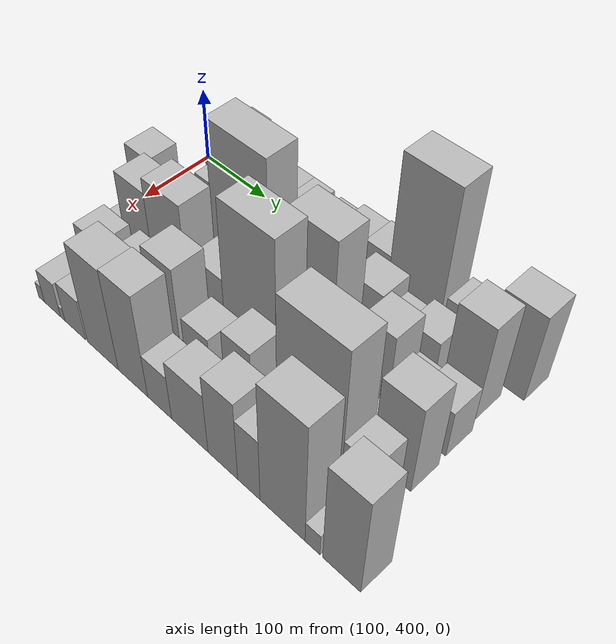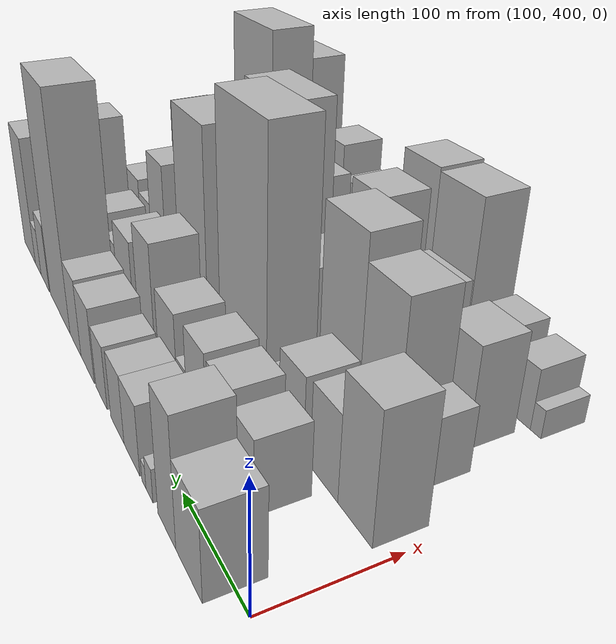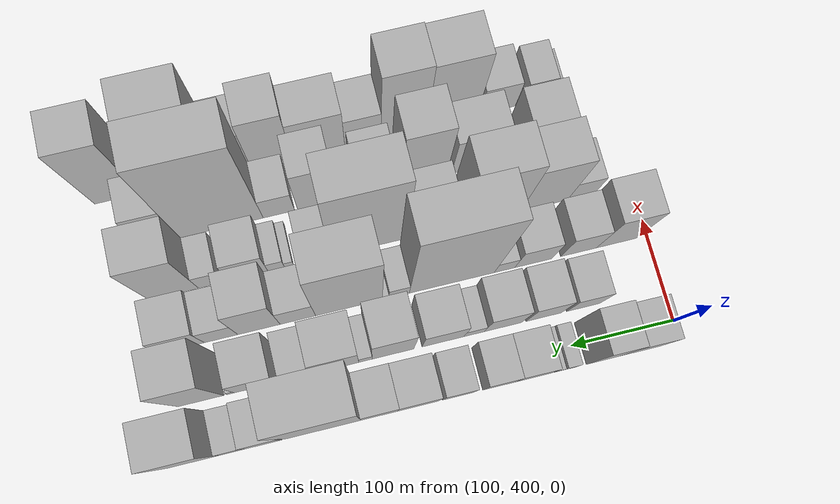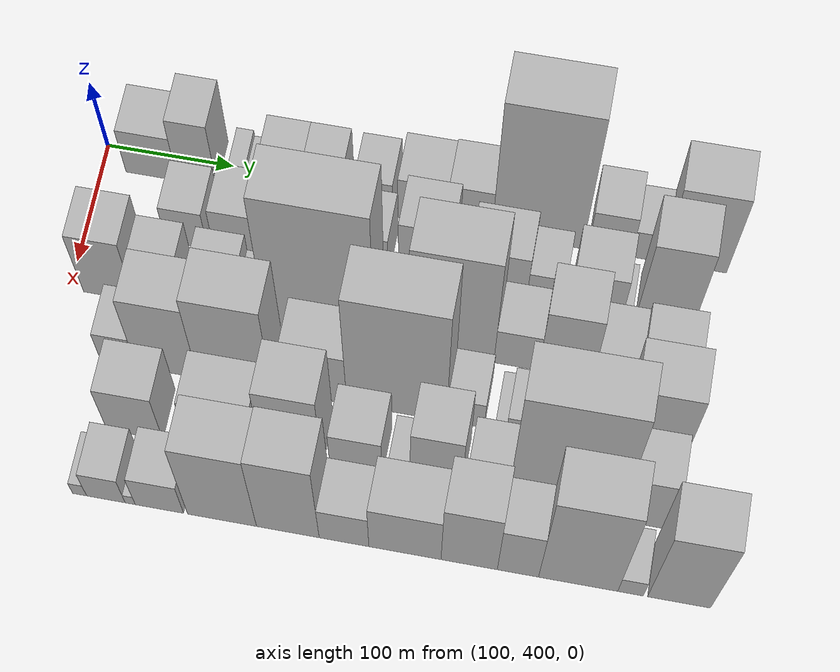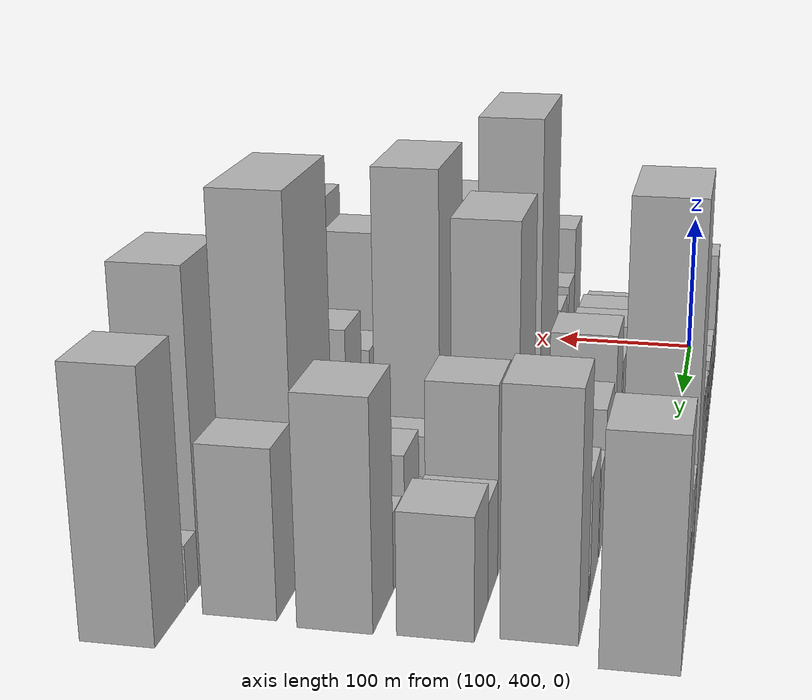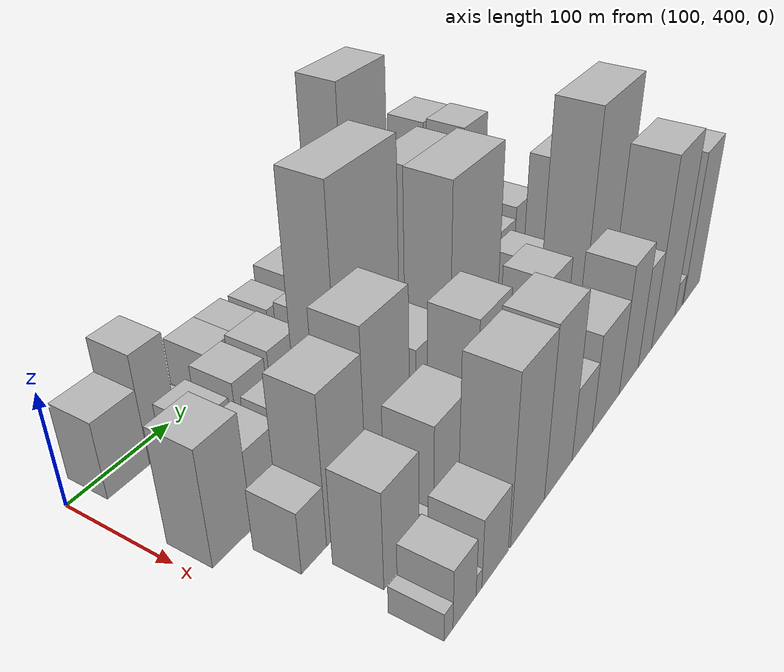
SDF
<sdf version="1.6">
 <world name="default">
  <model name="building_39">
   <static>1</static>
   <pose>100.0000 439.3094 0 0.000000 0.000000 0.000000</pose>
   <link name="link">
    <pose>0 0 34.50 0 0 0</pose>
    <collision name="collision"><geometry><box><size>40.0000 40.8134 69.0000</size></box></geometry></collision>
    <visual name="visual">
     <cast_shadows>0</cast_shadows>
     <geometry><box><size>40.0000 40.8134 69.0000</size></box></geometry>
     <material>
      <script>
       <uri>model://HANNAS_wall/materials/scripts</uri>
       <uri>model://HANNAS_wall/materials/textures</uri>
       <name>vrc/HANNAS_wall</name>
      </script>
     </material>
    </visual>
   </link>
  </model>
  <model name="building_40">
   <static>1</static>
   <pose>100.0000 475.4069 0 0.000000 0.000000 0.000000</pose>
   <link name="link">
    <pose>0 0 49.50 0 0 0</pose>
    <collision name="collision"><geometry><box><size>40.0000 31.3816 99.0000</size></box></geometry></collision>
    <visual name="visual">
     <cast_shadows>0</cast_shadows>
     <geometry><box><size>40.0000 31.3816 99.0000</size></box></geometry>
     <material>
      <script>
       <uri>model://HANNAS_wall/materials/scripts</uri>
       <uri>model://HANNAS_wall/materials/textures</uri>
       <name>vrc/HANNAS_wall</name>
      </script>
     </material>
    </visual>
   </link>
  </model>
  <model name="building_41">
   <static>1</static>
   <pose>100.0000 506.8085 0 0.000000 0.000000 0.000000</pose>
   <link name="link">
    <pose>0 0 13.50 0 0 0</pose>
    <collision name="collision"><geometry><box><size>40.0000 13.4217 27.0000</size></box></geometry></collision>
    <visual name="visual">
     <cast_shadows>0</cast_shadows>
     <geometry><box><size>40.0000 13.4217 27.0000</size></box></geometry>
     <material>
      <script>
       <uri>model://HANNAS_wall/materials/scripts</uri>
       <uri>model://HANNAS_wall/materials/textures</uri>
       <name>vrc/HANNAS_wall</name>
      </script>
     </material>
    </visual>
   </link>
  </model>
  <model name="building_42">
   <static>1</static>
   <pose>100.0000 517.6482 0 0.000000 0.000000 0.000000</pose>
   <link name="link">
    <pose>0 0 9.00 0 0 0</pose>
    <collision name="collision"><geometry><box><size>40.0000 8.2577 18.0000</size></box></geometry></collision>
    <visual name="visual">
     <cast_shadows>0</cast_shadows>
     <geometry><box><size>40.0000 8.2577 18.0000</size></box></geometry>
     <material>
      <script>
       <uri>model://HANNAS_wall/materials/scripts</uri>
       <uri>model://HANNAS_wall/materials/textures</uri>
       <name>vrc/HANNAS_wall</name>
      </script>
     </material>
    </visual>
   </link>
  </model>
  <model name="building_43">
   <static>1</static>
   <pose>100.0000 542.6935 0 0.000000 0.000000 0.000000</pose>
   <link name="link">
    <pose>0 0 28.50 0 0 0</pose>
    <collision name="collision"><geometry><box><size>40.0000 33.8327 57.0000</size></box></geometry></collision>
    <visual name="visual">
     <cast_shadows>0</cast_shadows>
     <geometry><box><size>40.0000 33.8327 57.0000</size></box></geometry>
     <material>
      <script>
       <uri>model://HANNAS_wall/materials/scripts</uri>
       <uri>model://HANNAS_wall/materials/textures</uri>
       <name>vrc/HANNAS_wall</name>
      </script>
     </material>
    </visual>
   </link>
  </model>
  <model name="building_44">
   <static>1</static>
   <pose>100.0000 575.2083 0 0.000000 0.000000 0.000000</pose>
   <link name="link">
    <pose>0 0 28.50 0 0 0</pose>
    <collision name="collision"><geometry><box><size>40.0000 31.1970 57.0000</size></box></geometry></collision>
    <visual name="visual">
     <cast_shadows>0</cast_shadows>
     <geometry><box><size>40.0000 31.1970 57.0000</size></box></geometry>
     <material>
      <script>
       <uri>model://HANNAS_wall/materials/scripts</uri>
       <uri>model://HANNAS_wall/materials/textures</uri>
       <name>vrc/HANNAS_wall</name>
      </script>
     </material>
    </visual>
   </link>
  </model>
  <model name="building_45">
   <static>1</static>
   <pose>100.0000 614.5496 0 0.000000 0.000000 0.000000</pose>
   <link name="link">
    <pose>0 0 27.00 0 0 0</pose>
    <collision name="collision"><geometry><box><size>40.0000 29.4855 54.0000</size></box></geometry></collision>
    <visual name="visual">
     <cast_shadows>0</cast_shadows>
     <geometry><box><size>40.0000 29.4855 54.0000</size></box></geometry>
     <material>
      <script>
       <uri>model://HANNAS_wall/materials/scripts</uri>
       <uri>model://HANNAS_wall/materials/textures</uri>
       <name>vrc/HANNAS_wall</name>
      </script>
     </material>
    </visual>
   </link>
  </model>
  <model name="building_46">
   <static>1</static>
   <pose>100.0000 652.6038 0 0.000000 0.000000 0.000000</pose>
   <link name="link">
    <pose>0 0 33.00 0 0 0</pose>
    <collision name="collision"><geometry><box><size>40.0000 38.6227 66.0000</size></box></geometry></collision>
    <visual name="visual">
     <cast_shadows>0</cast_shadows>
     <geometry><box><size>40.0000 38.6227 66.0000</size></box></geometry>
     <material>
      <script>
       <uri>model://HANNAS_wall/materials/scripts</uri>
       <uri>model://HANNAS_wall/materials/textures</uri>
       <name>vrc/HANNAS_wall</name>
      </script>
     </material>
    </visual>
   </link>
  </model>
  <model name="building_47">
   <static>1</static>
   <pose>100.0000 689.1792 0 0.000000 0.000000 0.000000</pose>
   <link name="link">
    <pose>0 0 34.50 0 0 0</pose>
    <collision name="collision"><geometry><box><size>40.0000 34.5283 69.0000</size></box></geometry></collision>
    <visual name="visual">
     <cast_shadows>0</cast_shadows>
     <geometry><box><size>40.0000 34.5283 69.0000</size></box></geometry>
     <material>
      <script>
       <uri>model://HANNAS_wall/materials/scripts</uri>
       <uri>model://HANNAS_wall/materials/textures</uri>
       <name>vrc/HANNAS_wall</name>
      </script>
     </material>
    </visual>
   </link>
  </model>
  <model name="building_48">
   <static>1</static>
   <pose>100.0000 741.5314 0 0.000000 0.000000 0.000000</pose>
   <link name="link">
    <pose>0 0 105.00 0 0 0</pose>
    <collision name="collision"><geometry><box><size>40.0000 70.1761 210.0000</size></box></geometry></collision>
    <visual name="visual">
     <cast_shadows>0</cast_shadows>
     <geometry><box><size>40.0000 70.1761 210.0000</size></box></geometry>
     <material>
      <script>
       <uri>model://HANNAS_wall/materials/scripts</uri>
       <uri>model://HANNAS_wall/materials/textures</uri>
       <name>vrc/HANNAS_wall</name>
      </script>
     </material>
    </visual>
   </link>
  </model>
  <model name="building_49">
   <static>1</static>
   <pose>100.0000 797.2929 0 0.000000 0.000000 0.000000</pose>
   <link name="link">
    <pose>0 0 33.00 0 0 0</pose>
    <collision name="collision"><geometry><box><size>40.0000 33.3468 66.0000</size></box></geometry></collision>
    <visual name="visual">
     <cast_shadows>0</cast_shadows>
     <geometry><box><size>40.0000 33.3468 66.0000</size></box></geometry>
     <material>
      <script>
       <uri>model://HANNAS_wall/materials/scripts</uri>
       <uri>model://HANNAS_wall/materials/textures</uri>
       <name>vrc/HANNAS_wall</name>
      </script>
     </material>
    </visual>
   </link>
  </model>
  <model name="building_50">
   <static>1</static>
   <pose>100.0000 826.0094 0 0.000000 0.000000 0.000000</pose>
   <link name="link">
    <pose>0 0 22.50 0 0 0</pose>
    <collision name="collision"><geometry><box><size>40.0000 24.0863 45.0000</size></box></geometry></collision>
    <visual name="visual">
     <cast_shadows>0</cast_shadows>
     <geometry><box><size>40.0000 24.0863 45.0000</size></box></geometry>
     <material>
      <script>
       <uri>model://HANNAS_wall/materials/scripts</uri>
       <uri>model://HANNAS_wall/materials/textures</uri>
       <name>vrc/HANNAS_wall</name>
      </script>
     </material>
    </visual>
   </link>
  </model>
  <model name="building_51">
   <static>1</static>
   <pose>100.0000 862.6243 0 0.000000 0.000000 0.000000</pose>
   <link name="link">
    <pose>0 0 63.00 0 0 0</pose>
    <collision name="collision"><geometry><box><size>40.0000 49.1435 126.0000</size></box></geometry></collision>
    <visual name="visual">
     <cast_shadows>0</cast_shadows>
     <geometry><box><size>40.0000 49.1435 126.0000</size></box></geometry>
     <material>
      <script>
       <uri>model://HANNAS_wall/materials/scripts</uri>
       <uri>model://HANNAS_wall/materials/textures</uri>
       <name>vrc/HANNAS_wall</name>
      </script>
     </material>
    </visual>
   </link>
  </model>
  <model name="building_83">
   <static>1</static>
   <pose>152.0000 478.9262 0 0.000000 0.000000 0.000000</pose>
   <link name="link">
    <pose>0 0 30.00 0 0 0</pose>
    <collision name="collision"><geometry><box><size>40.0000 32.5907 60.0000</size></box></geometry></collision>
    <visual name="visual">
     <cast_shadows>0</cast_shadows>
     <geometry><box><size>40.0000 32.5907 60.0000</size></box></geometry>
     <material>
      <script>
       <uri>model://HANNAS_wall/materials/scripts</uri>
       <uri>model://HANNAS_wall/materials/textures</uri>
       <name>vrc/HANNAS_wall</name>
      </script>
     </material>
    </visual>
   </link>
  </model>
  <model name="building_84">
   <static>1</static>
   <pose>152.0000 517.5690 0 0.000000 0.000000 0.000000</pose>
   <link name="link">
    <pose>0 0 34.50 0 0 0</pose>
    <collision name="collision"><geometry><box><size>40.0000 34.6949 69.0000</size></box></geometry></collision>
    <visual name="visual">
     <cast_shadows>0</cast_shadows>
     <geometry><box><size>40.0000 34.6949 69.0000</size></box></geometry>
     <material>
      <script>
       <uri>model://HANNAS_wall/materials/scripts</uri>
       <uri>model://HANNAS_wall/materials/textures</uri>
       <name>vrc/HANNAS_wall</name>
      </script>
     </material>
    </visual>
   </link>
  </model>
  <model name="building_85">
   <static>1</static>
   <pose>152.0000 557.3188 0 0.000000 0.000000 0.000000</pose>
   <link name="link">
    <pose>0 0 36.00 0 0 0</pose>
    <collision name="collision"><geometry><box><size>40.0000 36.8047 72.0000</size></box></geometry></collision>
    <visual name="visual">
     <cast_shadows>0</cast_shadows>
     <geometry><box><size>40.0000 36.8047 72.0000</size></box></geometry>
     <material>
      <script>
       <uri>model://HANNAS_wall/materials/scripts</uri>
       <uri>model://HANNAS_wall/materials/textures</uri>
       <name>vrc/HANNAS_wall</name>
      </script>
     </material>
    </visual>
   </link>
  </model>
  <model name="building_86">
   <static>1</static>
   <pose>152.0000 585.4722 0 0.000000 0.000000 0.000000</pose>
   <link name="link">
    <pose>0 0 16.50 0 0 0</pose>
    <collision name="collision"><geometry><box><size>40.0000 19.5022 33.0000</size></box></geometry></collision>
    <visual name="visual">
     <cast_shadows>0</cast_shadows>
     <geometry><box><size>40.0000 19.5022 33.0000</size></box></geometry>
     <material>
      <script>
       <uri>model://HANNAS_wall/materials/scripts</uri>
       <uri>model://HANNAS_wall/materials/textures</uri>
       <name>vrc/HANNAS_wall</name>
      </script>
     </material>
    </visual>
   </link>
  </model>
  <model name="building_87">
   <static>1</static>
   <pose>152.0000 615.3806 0 0.000000 0.000000 0.000000</pose>
   <link name="link">
    <pose>0 0 34.50 0 0 0</pose>
    <collision name="collision"><geometry><box><size>40.0000 40.3146 69.0000</size></box></geometry></collision>
    <visual name="visual">
     <cast_shadows>0</cast_shadows>
     <geometry><box><size>40.0000 40.3146 69.0000</size></box></geometry>
     <material>
      <script>
       <uri>model://HANNAS_wall/materials/scripts</uri>
       <uri>model://HANNAS_wall/materials/textures</uri>
       <name>vrc/HANNAS_wall</name>
      </script>
     </material>
    </visual>
   </link>
  </model>
  <model name="building_88">
   <static>1</static>
   <pose>152.0000 663.4884 0 0.000000 0.000000 0.000000</pose>
   <link name="link">
    <pose>0 0 51.00 0 0 0</pose>
    <collision name="collision"><geometry><box><size>40.0000 39.9011 102.0000</size></box></geometry></collision>
    <visual name="visual">
     <cast_shadows>0</cast_shadows>
     <geometry><box><size>40.0000 39.9011 102.0000</size></box></geometry>
     <material>
      <script>
       <uri>model://HANNAS_wall/materials/scripts</uri>
       <uri>model://HANNAS_wall/materials/textures</uri>
       <name>vrc/HANNAS_wall</name>
      </script>
     </material>
    </visual>
   </link>
  </model>
  <model name="building_89">
   <static>1</static>
   <pose>152.0000 689.8315 0 0.000000 0.000000 0.000000</pose>
   <link name="link">
    <pose>0 0 13.50 0 0 0</pose>
    <collision name="collision"><geometry><box><size>40.0000 12.7852 27.0000</size></box></geometry></collision>
    <visual name="visual">
     <cast_shadows>0</cast_shadows>
     <geometry><box><size>40.0000 12.7852 27.0000</size></box></geometry>
     <material>
      <script>
       <uri>model://HANNAS_wall/materials/scripts</uri>
       <uri>model://HANNAS_wall/materials/textures</uri>
       <name>vrc/HANNAS_wall</name>
      </script>
     </material>
    </visual>
   </link>
  </model>
  <model name="building_90">
   <static>1</static>
   <pose>152.0000 718.7877 0 0.000000 0.000000 0.000000</pose>
   <link name="link">
    <pose>0 0 39.00 0 0 0</pose>
    <collision name="collision"><geometry><box><size>40.0000 45.1271 78.0000</size></box></geometry></collision>
    <visual name="visual">
     <cast_shadows>0</cast_shadows>
     <geometry><box><size>40.0000 45.1271 78.0000</size></box></geometry>
     <material>
      <script>
       <uri>model://HANNAS_wall/materials/scripts</uri>
       <uri>model://HANNAS_wall/materials/textures</uri>
       <name>vrc/HANNAS_wall</name>
      </script>
     </material>
    </visual>
   </link>
  </model>
  <model name="building_91">
   <static>1</static>
   <pose>152.0000 755.0618 0 0.000000 0.000000 0.000000</pose>
   <link name="link">
    <pose>0 0 27.00 0 0 0</pose>
    <collision name="collision"><geometry><box><size>40.0000 27.4213 54.0000</size></box></geometry></collision>
    <visual name="visual">
     <cast_shadows>0</cast_shadows>
     <geometry><box><size>40.0000 27.4213 54.0000</size></box></geometry>
     <material>
      <script>
       <uri>model://HANNAS_wall/materials/scripts</uri>
       <uri>model://HANNAS_wall/materials/textures</uri>
       <name>vrc/HANNAS_wall</name>
      </script>
     </material>
    </visual>
   </link>
  </model>
  <model name="building_92">
   <static>1</static>
   <pose>152.0000 794.0627 0 0.000000 0.000000 0.000000</pose>
   <link name="link">
    <pose>0 0 34.50 0 0 0</pose>
    <collision name="collision"><geometry><box><size>40.0000 40.5804 69.0000</size></box></geometry></collision>
    <visual name="visual">
     <cast_shadows>0</cast_shadows>
     <geometry><box><size>40.0000 40.5804 69.0000</size></box></geometry>
     <material>
      <script>
       <uri>model://HANNAS_wall/materials/scripts</uri>
       <uri>model://HANNAS_wall/materials/textures</uri>
       <name>vrc/HANNAS_wall</name>
      </script>
     </material>
    </visual>
   </link>
  </model>
  <model name="building_93">
   <static>1</static>
   <pose>152.0000 817.7464 0 0.000000 0.000000 0.000000</pose>
   <link name="link">
    <pose>0 0 7.50 0 0 0</pose>
    <collision name="collision"><geometry><box><size>40.0000 6.7871 15.0000</size></box></geometry></collision>
    <visual name="visual">
     <cast_shadows>0</cast_shadows>
     <geometry><box><size>40.0000 6.7871 15.0000</size></box></geometry>
     <material>
      <script>
       <uri>model://HANNAS_wall/materials/scripts</uri>
       <uri>model://HANNAS_wall/materials/textures</uri>
       <name>vrc/HANNAS_wall</name>
      </script>
     </material>
    </visual>
   </link>
  </model>
  <model name="building_94">
   <static>1</static>
   <pose>152.0000 845.7357 0 0.000000 0.000000 0.000000</pose>
   <link name="link">
    <pose>0 0 69.00 0 0 0</pose>
    <collision name="collision"><geometry><box><size>40.0000 43.1915 138.0000</size></box></geometry></collision>
    <visual name="visual">
     <cast_shadows>0</cast_shadows>
     <geometry><box><size>40.0000 43.1915 138.0000</size></box></geometry>
     <material>
      <script>
       <uri>model://HANNAS_wall/materials/scripts</uri>
       <uri>model://HANNAS_wall/materials/textures</uri>
       <name>vrc/HANNAS_wall</name>
      </script>
     </material>
    </visual>
   </link>
  </model>
  <model name="building_134">
   <static>1</static>
   <pose>204.0000 430.7013 0 0.000000 0.000000 0.000000</pose>
   <link name="link">
    <pose>0 0 51.00 0 0 0</pose>
    <collision name="collision"><geometry><box><size>40.0000 39.6786 102.0000</size></box></geometry></collision>
    <visual name="visual">
     <cast_shadows>0</cast_shadows>
     <geometry><box><size>40.0000 39.6786 102.0000</size></box></geometry>
     <material>
      <script>
       <uri>model://HANNAS_wall/materials/scripts</uri>
       <uri>model://HANNAS_wall/materials/textures</uri>
       <name>vrc/HANNAS_wall</name>
      </script>
     </material>
    </visual>
   </link>
  </model>
  <model name="building_135">
   <static>1</static>
   <pose>204.0000 468.2924 0 0.000000 0.000000 0.000000</pose>
   <link name="link">
    <pose>0 0 34.50 0 0 0</pose>
    <collision name="collision"><geometry><box><size>40.0000 35.5037 69.0000</size></box></geometry></collision>
    <visual name="visual">
     <cast_shadows>0</cast_shadows>
     <geometry><box><size>40.0000 35.5037 69.0000</size></box></geometry>
     <material>
      <script>
       <uri>model://HANNAS_wall/materials/scripts</uri>
       <uri>model://HANNAS_wall/materials/textures</uri>
       <name>vrc/HANNAS_wall</name>
      </script>
     </material>
    </visual>
   </link>
  </model>
  <model name="building_136">
   <static>1</static>
   <pose>204.0000 513.2655 0 0.000000 0.000000 0.000000</pose>
   <link name="link">
    <pose>0 0 33.00 0 0 0</pose>
    <collision name="collision"><geometry><box><size>40.0000 36.4424 66.0000</size></box></geometry></collision>
    <visual name="visual">
     <cast_shadows>0</cast_shadows>
     <geometry><box><size>40.0000 36.4424 66.0000</size></box></geometry>
     <material>
      <script>
       <uri>model://HANNAS_wall/materials/scripts</uri>
       <uri>model://HANNAS_wall/materials/textures</uri>
       <name>vrc/HANNAS_wall</name>
      </script>
     </material>
    </visual>
   </link>
  </model>
  <model name="building_137">
   <static>1</static>
   <pose>204.0000 541.5413 0 0.000000 0.000000 0.000000</pose>
   <link name="link">
    <pose>0 0 19.50 0 0 0</pose>
    <collision name="collision"><geometry><box><size>40.0000 20.1091 39.0000</size></box></geometry></collision>
    <visual name="visual">
     <cast_shadows>0</cast_shadows>
     <geometry><box><size>40.0000 20.1091 39.0000</size></box></geometry>
     <material>
      <script>
       <uri>model://HANNAS_wall/materials/scripts</uri>
       <uri>model://HANNAS_wall/materials/textures</uri>
       <name>vrc/HANNAS_wall</name>
      </script>
     </material>
    </visual>
   </link>
  </model>
  <model name="building_138">
   <static>1</static>
   <pose>204.0000 593.1459 0 0.000000 0.000000 0.000000</pose>
   <link name="link">
    <pose>0 0 109.50 0 0 0</pose>
    <collision name="collision"><geometry><box><size>40.0000 83.1002 219.0000</size></box></geometry></collision>
    <visual name="visual">
     <cast_shadows>0</cast_shadows>
     <geometry><box><size>40.0000 83.1002 219.0000</size></box></geometry>
     <material>
      <script>
       <uri>model://HANNAS_wall/materials/scripts</uri>
       <uri>model://HANNAS_wall/materials/textures</uri>
       <name>vrc/HANNAS_wall</name>
      </script>
     </material>
    </visual>
   </link>
  </model>
  <model name="building_139">
   <static>1</static>
   <pose>204.0000 644.5936 0 0.000000 0.000000 0.000000</pose>
   <link name="link">
    <pose>0 0 18.00 0 0 0</pose>
    <collision name="collision"><geometry><box><size>40.0000 19.7951 36.0000</size></box></geometry></collision>
    <visual name="visual">
     <cast_shadows>0</cast_shadows>
     <geometry><box><size>40.0000 19.7951 36.0000</size></box></geometry>
     <material>
      <script>
       <uri>model://HANNAS_wall/materials/scripts</uri>
       <uri>model://HANNAS_wall/materials/textures</uri>
       <name>vrc/HANNAS_wall</name>
      </script>
     </material>
    </visual>
   </link>
  </model>
  <model name="building_140">
   <static>1</static>
   <pose>204.0000 657.7146 0 0.000000 0.000000 0.000000</pose>
   <link name="link">
    <pose>0 0 7.50 0 0 0</pose>
    <collision name="collision"><geometry><box><size>40.0000 6.4469 15.0000</size></box></geometry></collision>
    <visual name="visual">
     <cast_shadows>0</cast_shadows>
     <geometry><box><size>40.0000 6.4469 15.0000</size></box></geometry>
     <material>
      <script>
       <uri>model://HANNAS_wall/materials/scripts</uri>
       <uri>model://HANNAS_wall/materials/textures</uri>
       <name>vrc/HANNAS_wall</name>
      </script>
     </material>
    </visual>
   </link>
  </model>
  <model name="building_141">
   <static>1</static>
   <pose>204.0000 693.1926 0 0.000000 0.000000 0.000000</pose>
   <link name="link">
    <pose>0 0 90.00 0 0 0</pose>
    <collision name="collision"><geometry><box><size>40.0000 64.5092 180.0000</size></box></geometry></collision>
    <visual name="visual">
     <cast_shadows>0</cast_shadows>
     <geometry><box><size>40.0000 64.5092 180.0000</size></box></geometry>
     <material>
      <script>
       <uri>model://HANNAS_wall/materials/scripts</uri>
       <uri>model://HANNAS_wall/materials/textures</uri>
       <name>vrc/HANNAS_wall</name>
      </script>
     </material>
    </visual>
   </link>
  </model>
  <model name="building_142">
   <static>1</static>
   <pose>204.0000 742.4298 0 0.000000 0.000000 0.000000</pose>
   <link name="link">
    <pose>0 0 31.50 0 0 0</pose>
    <collision name="collision"><geometry><box><size>40.0000 33.9652 63.0000</size></box></geometry></collision>
    <visual name="visual">
     <cast_shadows>0</cast_shadows>
     <geometry><box><size>40.0000 33.9652 63.0000</size></box></geometry>
     <material>
      <script>
       <uri>model://HANNAS_wall/materials/scripts</uri>
       <uri>model://HANNAS_wall/materials/textures</uri>
       <name>vrc/HANNAS_wall</name>
      </script>
     </material>
    </visual>
   </link>
  </model>
  <model name="building_143">
   <static>1</static>
   <pose>204.0000 779.7382 0 0.000000 0.000000 0.000000</pose>
   <link name="link">
    <pose>0 0 55.50 0 0 0</pose>
    <collision name="collision"><geometry><box><size>40.0000 40.6515 111.0000</size></box></geometry></collision>
    <visual name="visual">
     <cast_shadows>0</cast_shadows>
     <geometry><box><size>40.0000 40.6515 111.0000</size></box></geometry>
     <material>
      <script>
       <uri>model://HANNAS_wall/materials/scripts</uri>
       <uri>model://HANNAS_wall/materials/textures</uri>
       <name>vrc/HANNAS_wall</name>
      </script>
     </material>
    </visual>
   </link>
  </model>
  <model name="building_144">
   <static>1</static>
   <pose>204.0000 816.0132 0 0.000000 0.000000 0.000000</pose>
   <link name="link">
    <pose>0 0 28.50 0 0 0</pose>
    <collision name="collision"><geometry><box><size>40.0000 31.8986 57.0000</size></box></geometry></collision>
    <visual name="visual">
     <cast_shadows>0</cast_shadows>
     <geometry><box><size>40.0000 31.8986 57.0000</size></box></geometry>
     <material>
      <script>
       <uri>model://HANNAS_wall/materials/scripts</uri>
       <uri>model://HANNAS_wall/materials/textures</uri>
       <name>vrc/HANNAS_wall</name>
      </script>
     </material>
    </visual>
   </link>
  </model>
  <model name="building_145">
   <static>1</static>
   <pose>204.0000 852.5925 0 0.000000 0.000000 0.000000</pose>
   <link name="link">
    <pose>0 0 34.50 0 0 0</pose>
    <collision name="collision"><geometry><box><size>40.0000 41.2599 69.0000</size></box></geometry></collision>
    <visual name="visual">
     <cast_shadows>0</cast_shadows>
     <geometry><box><size>40.0000 41.2599 69.0000</size></box></geometry>
     <material>
      <script>
       <uri>model://HANNAS_wall/materials/scripts</uri>
       <uri>model://HANNAS_wall/materials/textures</uri>
       <name>vrc/HANNAS_wall</name>
      </script>
     </material>
    </visual>
   </link>
  </model>
  <model name="building_181">
   <static>1</static>
   <pose>256.0000 450.6161 0 0.000000 0.000000 0.000000</pose>
   <link name="link">
    <pose>0 0 27.00 0 0 0</pose>
    <collision name="collision"><geometry><box><size>40.0000 27.3212 54.0000</size></box></geometry></collision>
    <visual name="visual">
     <cast_shadows>0</cast_shadows>
     <geometry><box><size>40.0000 27.3212 54.0000</size></box></geometry>
     <material>
      <script>
       <uri>model://HANNAS_wall/materials/scripts</uri>
       <uri>model://HANNAS_wall/materials/textures</uri>
       <name>vrc/HANNAS_wall</name>
      </script>
     </material>
    </visual>
   </link>
  </model>
  <model name="building_182">
   <static>1</static>
   <pose>256.0000 487.7303 0 0.000000 0.000000 0.000000</pose>
   <link name="link">
    <pose>0 0 64.50 0 0 0</pose>
    <collision name="collision"><geometry><box><size>40.0000 46.9072 129.0000</size></box></geometry></collision>
    <visual name="visual">
     <cast_shadows>0</cast_shadows>
     <geometry><box><size>40.0000 46.9072 129.0000</size></box></geometry>
     <material>
      <script>
       <uri>model://HANNAS_wall/materials/scripts</uri>
       <uri>model://HANNAS_wall/materials/textures</uri>
       <name>vrc/HANNAS_wall</name>
      </script>
     </material>
    </visual>
   </link>
  </model>
  <model name="building_183">
   <static>1</static>
   <pose>256.0000 539.2598 0 0.000000 0.000000 0.000000</pose>
   <link name="link">
    <pose>0 0 75.00 0 0 0</pose>
    <collision name="collision"><geometry><box><size>40.0000 56.1517 150.0000</size></box></geometry></collision>
    <visual name="visual">
     <cast_shadows>0</cast_shadows>
     <geometry><box><size>40.0000 56.1517 150.0000</size></box></geometry>
     <material>
      <script>
       <uri>model://HANNAS_wall/materials/scripts</uri>
       <uri>model://HANNAS_wall/materials/textures</uri>
       <name>vrc/HANNAS_wall</name>
      </script>
     </material>
    </visual>
   </link>
  </model>
  <model name="building_184">
   <static>1</static>
   <pose>256.0000 600.1621 0 0.000000 0.000000 0.000000</pose>
   <link name="link">
    <pose>0 0 45.00 0 0 0</pose>
    <collision name="collision"><geometry><box><size>40.0000 47.6529 90.0000</size></box></geometry></collision>
    <visual name="visual">
     <cast_shadows>0</cast_shadows>
     <geometry><box><size>40.0000 47.6529 90.0000</size></box></geometry>
     <material>
      <script>
       <uri>model://HANNAS_wall/materials/scripts</uri>
       <uri>model://HANNAS_wall/materials/textures</uri>
       <name>vrc/HANNAS_wall</name>
      </script>
     </material>
    </visual>
   </link>
  </model>
  <model name="building_185">
   <static>1</static>
   <pose>256.0000 661.3679 0 0.000000 0.000000 0.000000</pose>
   <link name="link">
    <pose>0 0 100.50 0 0 0</pose>
    <collision name="collision"><geometry><box><size>40.0000 74.7586 201.0000</size></box></geometry></collision>
    <visual name="visual">
     <cast_shadows>0</cast_shadows>
     <geometry><box><size>40.0000 74.7586 201.0000</size></box></geometry>
     <material>
      <script>
       <uri>model://HANNAS_wall/materials/scripts</uri>
       <uri>model://HANNAS_wall/materials/textures</uri>
       <name>vrc/HANNAS_wall</name>
      </script>
     </material>
    </visual>
   </link>
  </model>
  <model name="building_186">
   <static>1</static>
   <pose>256.0000 712.8595 0 0.000000 0.000000 0.000000</pose>
   <link name="link">
    <pose>0 0 24.00 0 0 0</pose>
    <collision name="collision"><geometry><box><size>40.0000 28.2247 48.0000</size></box></geometry></collision>
    <visual name="visual">
     <cast_shadows>0</cast_shadows>
     <geometry><box><size>40.0000 28.2247 48.0000</size></box></geometry>
     <material>
      <script>
       <uri>model://HANNAS_wall/materials/scripts</uri>
       <uri>model://HANNAS_wall/materials/textures</uri>
       <name>vrc/HANNAS_wall</name>
      </script>
     </material>
    </visual>
   </link>
  </model>
  <model name="building_187">
   <static>1</static>
   <pose>256.0000 739.3110 0 0.000000 0.000000 0.000000</pose>
   <link name="link">
    <pose>0 0 9.00 0 0 0</pose>
    <collision name="collision"><geometry><box><size>40.0000 8.6783 18.0000</size></box></geometry></collision>
    <visual name="visual">
     <cast_shadows>0</cast_shadows>
     <geometry><box><size>40.0000 8.6783 18.0000</size></box></geometry>
     <material>
      <script>
       <uri>model://HANNAS_wall/materials/scripts</uri>
       <uri>model://HANNAS_wall/materials/textures</uri>
       <name>vrc/HANNAS_wall</name>
      </script>
     </material>
    </visual>
   </link>
  </model>
  <model name="building_188">
   <static>1</static>
   <pose>256.0000 751.6578 0 0.000000 0.000000 0.000000</pose>
   <link name="link">
    <pose>0 0 15.00 0 0 0</pose>
    <collision name="collision"><geometry><box><size>40.0000 16.0152 30.0000</size></box></geometry></collision>
    <visual name="visual">
     <cast_shadows>0</cast_shadows>
     <geometry><box><size>40.0000 16.0152 30.0000</size></box></geometry>
     <material>
      <script>
       <uri>model://HANNAS_wall/materials/scripts</uri>
       <uri>model://HANNAS_wall/materials/textures</uri>
       <name>vrc/HANNAS_wall</name>
      </script>
     </material>
    </visual>
   </link>
  </model>
  <model name="building_189">
   <static>1</static>
   <pose>256.0000 778.8172 0 0.000000 0.000000 0.000000</pose>
   <link name="link">
    <pose>0 0 33.00 0 0 0</pose>
    <collision name="collision"><geometry><box><size>40.0000 38.3036 66.0000</size></box></geometry></collision>
    <visual name="visual">
     <cast_shadows>0</cast_shadows>
     <geometry><box><size>40.0000 38.3036 66.0000</size></box></geometry>
     <material>
      <script>
       <uri>model://HANNAS_wall/materials/scripts</uri>
       <uri>model://HANNAS_wall/materials/textures</uri>
       <name>vrc/HANNAS_wall</name>
      </script>
     </material>
    </visual>
   </link>
  </model>
  <model name="building_190">
   <static>1</static>
   <pose>256.0000 815.5818 0 0.000000 0.000000 0.000000</pose>
   <link name="link">
    <pose>0 0 22.50 0 0 0</pose>
    <collision name="collision"><geometry><box><size>40.0000 23.2256 45.0000</size></box></geometry></collision>
    <visual name="visual">
     <cast_shadows>0</cast_shadows>
     <geometry><box><size>40.0000 23.2256 45.0000</size></box></geometry>
     <material>
      <script>
       <uri>model://HANNAS_wall/materials/scripts</uri>
       <uri>model://HANNAS_wall/materials/textures</uri>
       <name>vrc/HANNAS_wall</name>
      </script>
     </material>
    </visual>
   </link>
  </model>
  <model name="building_191">
   <static>1</static>
   <pose>256.0000 850.9704 0 0.000000 0.000000 0.000000</pose>
   <link name="link">
    <pose>0 0 64.50 0 0 0</pose>
    <collision name="collision"><geometry><box><size>40.0000 47.5516 129.0000</size></box></geometry></collision>
    <visual name="visual">
     <cast_shadows>0</cast_shadows>
     <geometry><box><size>40.0000 47.5516 129.0000</size></box></geometry>
     <material>
      <script>
       <uri>model://HANNAS_wall/materials/scripts</uri>
       <uri>model://HANNAS_wall/materials/textures</uri>
       <name>vrc/HANNAS_wall</name>
      </script>
     </material>
    </visual>
   </link>
  </model>
  <model name="building_232">
   <static>1</static>
   <pose>308.0000 475.3979 0 0.000000 0.000000 0.000000</pose>
   <link name="link">
    <pose>0 0 42.00 0 0 0</pose>
    <collision name="collision"><geometry><box><size>40.0000 42.1933 84.0000</size></box></geometry></collision>
    <visual name="visual">
     <cast_shadows>0</cast_shadows>
     <geometry><box><size>40.0000 42.1933 84.0000</size></box></geometry>
     <material>
      <script>
       <uri>model://HANNAS_wall/materials/scripts</uri>
       <uri>model://HANNAS_wall/materials/textures</uri>
       <name>vrc/HANNAS_wall</name>
      </script>
     </material>
    </visual>
   </link>
  </model>
  <model name="building_233">
   <static>1</static>
   <pose>308.0000 510.7390 0 0.000000 0.000000 0.000000</pose>
   <link name="link">
    <pose>0 0 9.00 0 0 0</pose>
    <collision name="collision"><geometry><box><size>40.0000 8.4888 18.0000</size></box></geometry></collision>
    <visual name="visual">
     <cast_shadows>0</cast_shadows>
     <geometry><box><size>40.0000 8.4888 18.0000</size></box></geometry>
     <material>
      <script>
       <uri>model://HANNAS_wall/materials/scripts</uri>
       <uri>model://HANNAS_wall/materials/textures</uri>
       <name>vrc/HANNAS_wall</name>
      </script>
     </material>
    </visual>
   </link>
  </model>
  <model name="building_234">
   <static>1</static>
   <pose>308.0000 540.7319 0 0.000000 0.000000 0.000000</pose>
   <link name="link">
    <pose>0 0 45.00 0 0 0</pose>
    <collision name="collision"><geometry><box><size>40.0000 51.4970 90.0000</size></box></geometry></collision>
    <visual name="visual">
     <cast_shadows>0</cast_shadows>
     <geometry><box><size>40.0000 51.4970 90.0000</size></box></geometry>
     <material>
      <script>
       <uri>model://HANNAS_wall/materials/scripts</uri>
       <uri>model://HANNAS_wall/materials/textures</uri>
       <name>vrc/HANNAS_wall</name>
      </script>
     </material>
    </visual>
   </link>
  </model>
  <model name="building_235">
   <static>1</static>
   <pose>308.0000 593.7287 0 0.000000 0.000000 0.000000</pose>
   <link name="link">
    <pose>0 0 69.00 0 0 0</pose>
    <collision name="collision"><geometry><box><size>40.0000 44.4967 138.0000</size></box></geometry></collision>
    <visual name="visual">
     <cast_shadows>0</cast_shadows>
     <geometry><box><size>40.0000 44.4967 138.0000</size></box></geometry>
     <material>
      <script>
       <uri>model://HANNAS_wall/materials/scripts</uri>
       <uri>model://HANNAS_wall/materials/textures</uri>
       <name>vrc/HANNAS_wall</name>
      </script>
     </material>
    </visual>
   </link>
  </model>
  <model name="building_236">
   <static>1</static>
   <pose>308.0000 641.0952 0 0.000000 0.000000 0.000000</pose>
   <link name="link">
    <pose>0 0 37.50 0 0 0</pose>
    <collision name="collision"><geometry><box><size>40.0000 38.2363 75.0000</size></box></geometry></collision>
    <visual name="visual">
     <cast_shadows>0</cast_shadows>
     <geometry><box><size>40.0000 38.2363 75.0000</size></box></geometry>
     <material>
      <script>
       <uri>model://HANNAS_wall/materials/scripts</uri>
       <uri>model://HANNAS_wall/materials/textures</uri>
       <name>vrc/HANNAS_wall</name>
      </script>
     </material>
    </visual>
   </link>
  </model>
  <model name="building_237">
   <static>1</static>
   <pose>308.0000 672.6019 0 0.000000 0.000000 0.000000</pose>
   <link name="link">
    <pose>0 0 15.00 0 0 0</pose>
    <collision name="collision"><geometry><box><size>40.0000 16.7771 30.0000</size></box></geometry></collision>
    <visual name="visual">
     <cast_shadows>0</cast_shadows>
     <geometry><box><size>40.0000 16.7771 30.0000</size></box></geometry>
     <material>
      <script>
       <uri>model://HANNAS_wall/materials/scripts</uri>
       <uri>model://HANNAS_wall/materials/textures</uri>
       <name>vrc/HANNAS_wall</name>
      </script>
     </material>
    </visual>
   </link>
  </model>
  <model name="building_238">
   <static>1</static>
   <pose>308.0000 700.0868 0 0.000000 0.000000 0.000000</pose>
   <link name="link">
    <pose>0 0 54.00 0 0 0</pose>
    <collision name="collision"><geometry><box><size>40.0000 38.1926 108.0000</size></box></geometry></collision>
    <visual name="visual">
     <cast_shadows>0</cast_shadows>
     <geometry><box><size>40.0000 38.1926 108.0000</size></box></geometry>
     <material>
      <script>
       <uri>model://HANNAS_wall/materials/scripts</uri>
       <uri>model://HANNAS_wall/materials/textures</uri>
       <name>vrc/HANNAS_wall</name>
      </script>
     </material>
    </visual>
   </link>
  </model>
  <model name="building_239">
   <static>1</static>
   <pose>308.0000 737.6210 0 0.000000 0.000000 0.000000</pose>
   <link name="link">
    <pose>0 0 28.50 0 0 0</pose>
    <collision name="collision"><geometry><box><size>40.0000 30.8757 57.0000</size></box></geometry></collision>
    <visual name="visual">
     <cast_shadows>0</cast_shadows>
     <geometry><box><size>40.0000 30.8757 57.0000</size></box></geometry>
     <material>
      <script>
       <uri>model://HANNAS_wall/materials/scripts</uri>
       <uri>model://HANNAS_wall/materials/textures</uri>
       <name>vrc/HANNAS_wall</name>
      </script>
     </material>
    </visual>
   </link>
  </model>
  <model name="building_240">
   <static>1</static>
   <pose>308.0000 793.6927 0 0.000000 0.000000 0.000000</pose>
   <link name="link">
    <pose>0 0 109.50 0 0 0</pose>
    <collision name="collision"><geometry><box><size>40.0000 81.2677 219.0000</size></box></geometry></collision>
    <visual name="visual">
     <cast_shadows>0</cast_shadows>
     <geometry><box><size>40.0000 81.2677 219.0000</size></box></geometry>
     <material>
      <script>
       <uri>model://HANNAS_wall/materials/scripts</uri>
       <uri>model://HANNAS_wall/materials/textures</uri>
       <name>vrc/HANNAS_wall</name>
      </script>
     </material>
    </visual>
   </link>
  </model>
  <model name="building_241">
   <static>1</static>
   <pose>308.0000 852.1946 0 0.000000 0.000000 0.000000</pose>
   <link name="link">
    <pose>0 0 48.00 0 0 0</pose>
    <collision name="collision"><geometry><box><size>40.0000 35.7362 96.0000</size></box></geometry></collision>
    <visual name="visual">
     <cast_shadows>0</cast_shadows>
     <geometry><box><size>40.0000 35.7362 96.0000</size></box></geometry>
     <material>
      <script>
       <uri>model://HANNAS_wall/materials/scripts</uri>
       <uri>model://HANNAS_wall/materials/textures</uri>
       <name>vrc/HANNAS_wall</name>
      </script>
     </material>
    </visual>
   </link>
  </model>
  <model name="building_273">
   <static>1</static>
   <pose>360.0000 446.4499 0 0.000000 0.000000 0.000000</pose>
   <link name="link">
    <pose>0 0 12.00 0 0 0</pose>
    <collision name="collision"><geometry><box><size>40.0000 10.4859 24.0000</size></box></geometry></collision>
    <visual name="visual">
     <cast_shadows>0</cast_shadows>
     <geometry><box><size>40.0000 10.4859 24.0000</size></box></geometry>
     <material>
      <script>
       <uri>model://HANNAS_wall/materials/scripts</uri>
       <uri>model://HANNAS_wall/materials/textures</uri>
       <name>vrc/HANNAS_wall</name>
      </script>
     </material>
    </visual>
   </link>
  </model>
  <model name="building_274">
   <static>1</static>
   <pose>360.0000 466.0770 0 0.000000 0.000000 0.000000</pose>
   <link name="link">
    <pose>0 0 25.50 0 0 0</pose>
    <collision name="collision"><geometry><box><size>40.0000 28.7682 51.0000</size></box></geometry></collision>
    <visual name="visual">
     <cast_shadows>0</cast_shadows>
     <geometry><box><size>40.0000 28.7682 51.0000</size></box></geometry>
     <material>
      <script>
       <uri>model://HANNAS_wall/materials/scripts</uri>
       <uri>model://HANNAS_wall/materials/textures</uri>
       <name>vrc/HANNAS_wall</name>
      </script>
     </material>
    </visual>
   </link>
  </model>
  <model name="building_275">
   <static>1</static>
   <pose>360.0000 484.2083 0 0.000000 0.000000 0.000000</pose>
   <link name="link">
    <pose>0 0 9.00 0 0 0</pose>
    <collision name="collision"><geometry><box><size>40.0000 7.4943 18.0000</size></box></geometry></collision>
    <visual name="visual">
     <cast_shadows>0</cast_shadows>
     <geometry><box><size>40.0000 7.4943 18.0000</size></box></geometry>
     <material>
      <script>
       <uri>model://HANNAS_wall/materials/scripts</uri>
       <uri>model://HANNAS_wall/materials/textures</uri>
       <name>vrc/HANNAS_wall</name>
      </script>
     </material>
    </visual>
   </link>
  </model>
  <model name="building_276">
   <static>1</static>
   <pose>360.0000 505.9088 0 0.000000 0.000000 0.000000</pose>
   <link name="link">
    <pose>0 0 30.00 0 0 0</pose>
    <collision name="collision"><geometry><box><size>40.0000 35.9068 60.0000</size></box></geometry></collision>
    <visual name="visual">
     <cast_shadows>0</cast_shadows>
     <geometry><box><size>40.0000 35.9068 60.0000</size></box></geometry>
     <material>
      <script>
       <uri>model://HANNAS_wall/materials/scripts</uri>
       <uri>model://HANNAS_wall/materials/textures</uri>
       <name>vrc/HANNAS_wall</name>
      </script>
     </material>
    </visual>
   </link>
  </model>
  <model name="building_277">
   <static>1</static>
   <pose>360.0000 552.3731 0 0.000000 0.000000 0.000000</pose>
   <link name="link">
    <pose>0 0 73.50 0 0 0</pose>
    <collision name="collision"><geometry><box><size>40.0000 51.0216 147.0000</size></box></geometry></collision>
    <visual name="visual">
     <cast_shadows>0</cast_shadows>
     <geometry><box><size>40.0000 51.0216 147.0000</size></box></geometry>
     <material>
      <script>
       <uri>model://HANNAS_wall/materials/scripts</uri>
       <uri>model://HANNAS_wall/materials/textures</uri>
       <name>vrc/HANNAS_wall</name>
      </script>
     </material>
    </visual>
   </link>
  </model>
  <model name="building_278">
   <static>1</static>
   <pose>360.0000 600.9745 0 0.000000 0.000000 0.000000</pose>
   <link name="link">
    <pose>0 0 75.00 0 0 0</pose>
    <collision name="collision"><geometry><box><size>40.0000 46.1812 150.0000</size></box></geometry></collision>
    <visual name="visual">
     <cast_shadows>0</cast_shadows>
     <geometry><box><size>40.0000 46.1812 150.0000</size></box></geometry>
     <material>
      <script>
       <uri>model://HANNAS_wall/materials/scripts</uri>
       <uri>model://HANNAS_wall/materials/textures</uri>
       <name>vrc/HANNAS_wall</name>
      </script>
     </material>
    </visual>
   </link>
  </model>
  <model name="building_279">
   <static>1</static>
   <pose>360.0000 642.2705 0 0.000000 0.000000 0.000000</pose>
   <link name="link">
    <pose>0 0 33.00 0 0 0</pose>
    <collision name="collision"><geometry><box><size>40.0000 36.4109 66.0000</size></box></geometry></collision>
    <visual name="visual">
     <cast_shadows>0</cast_shadows>
     <geometry><box><size>40.0000 36.4109 66.0000</size></box></geometry>
     <material>
      <script>
       <uri>model://HANNAS_wall/materials/scripts</uri>
       <uri>model://HANNAS_wall/materials/textures</uri>
       <name>vrc/HANNAS_wall</name>
      </script>
     </material>
    </visual>
   </link>
  </model>
  <model name="building_280">
   <static>1</static>
   <pose>360.0000 686.8481 0 0.000000 0.000000 0.000000</pose>
   <link name="link">
    <pose>0 0 45.00 0 0 0</pose>
    <collision name="collision"><geometry><box><size>40.0000 52.7443 90.0000</size></box></geometry></collision>
    <visual name="visual">
     <cast_shadows>0</cast_shadows>
     <geometry><box><size>40.0000 52.7443 90.0000</size></box></geometry>
     <material>
      <script>
       <uri>model://HANNAS_wall/materials/scripts</uri>
       <uri>model://HANNAS_wall/materials/textures</uri>
       <name>vrc/HANNAS_wall</name>
      </script>
     </material>
    </visual>
   </link>
  </model>
  <model name="building_281">
   <static>1</static>
   <pose>360.0000 733.6940 0 0.000000 0.000000 0.000000</pose>
   <link name="link">
    <pose>0 0 60.00 0 0 0</pose>
    <collision name="collision"><geometry><box><size>40.0000 40.9474 120.0000</size></box></geometry></collision>
    <visual name="visual">
     <cast_shadows>0</cast_shadows>
     <geometry><box><size>40.0000 40.9474 120.0000</size></box></geometry>
     <material>
      <script>
       <uri>model://HANNAS_wall/materials/scripts</uri>
       <uri>model://HANNAS_wall/materials/textures</uri>
       <name>vrc/HANNAS_wall</name>
      </script>
     </material>
    </visual>
   </link>
  </model>
  <model name="building_282">
   <static>1</static>
   <pose>360.0000 769.1379 0 0.000000 0.000000 0.000000</pose>
   <link name="link">
    <pose>0 0 48.00 0 0 0</pose>
    <collision name="collision"><geometry><box><size>40.0000 29.9405 96.0000</size></box></geometry></collision>
    <visual name="visual">
     <cast_shadows>0</cast_shadows>
     <geometry><box><size>40.0000 29.9405 96.0000</size></box></geometry>
     <material>
      <script>
       <uri>model://HANNAS_wall/materials/scripts</uri>
       <uri>model://HANNAS_wall/materials/textures</uri>
       <name>vrc/HANNAS_wall</name>
      </script>
     </material>
    </visual>
   </link>
  </model>
  <model name="building_283">
   <static>1</static>
   <pose>360.0000 812.7567 0 0.000000 0.000000 0.000000</pose>
   <link name="link">
    <pose>0 0 90.00 0 0 0</pose>
    <collision name="collision"><geometry><box><size>40.0000 57.2972 180.0000</size></box></geometry></collision>
    <visual name="visual">
     <cast_shadows>0</cast_shadows>
     <geometry><box><size>40.0000 57.2972 180.0000</size></box></geometry>
     <material>
      <script>
       <uri>model://HANNAS_wall/materials/scripts</uri>
       <uri>model://HANNAS_wall/materials/textures</uri>
       <name>vrc/HANNAS_wall</name>
      </script>
     </material>
    </visual>
   </link>
  </model>
  <model name="building_284">
   <static>1</static>
   <pose>360.0000 850.6098 0 0.000000 0.000000 0.000000</pose>
   <link name="link">
    <pose>0 0 16.50 0 0 0</pose>
    <collision name="collision"><geometry><box><size>40.0000 18.4091 33.0000</size></box></geometry></collision>
    <visual name="visual">
     <cast_shadows>0</cast_shadows>
     <geometry><box><size>40.0000 18.4091 33.0000</size></box></geometry>
     <material>
      <script>
       <uri>model://HANNAS_wall/materials/scripts</uri>
       <uri>model://HANNAS_wall/materials/textures</uri>
       <name>vrc/HANNAS_wall</name>
      </script>
     </material>
    </visual>
   </link>
  </model>
  <model name="building_285">
   <static>1</static>
   <pose>360.0000 885.4039 0 0.000000 0.000000 0.000000</pose>
   <link name="link">
    <pose>0 0 75.00 0 0 0</pose>
    <collision name="collision"><geometry><box><size>40.0000 45.1792 150.0000</size></box></geometry></collision>
    <visual name="visual">
     <cast_shadows>0</cast_shadows>
     <geometry><box><size>40.0000 45.1792 150.0000</size></box></geometry>
     <material>
      <script>
       <uri>model://HANNAS_wall/materials/scripts</uri>
       <uri>model://HANNAS_wall/materials/textures</uri>
       <name>vrc/HANNAS_wall</name>
      </script>
     </material>
    </visual>
   </link>
  </model>
 </world>
</sdf>
